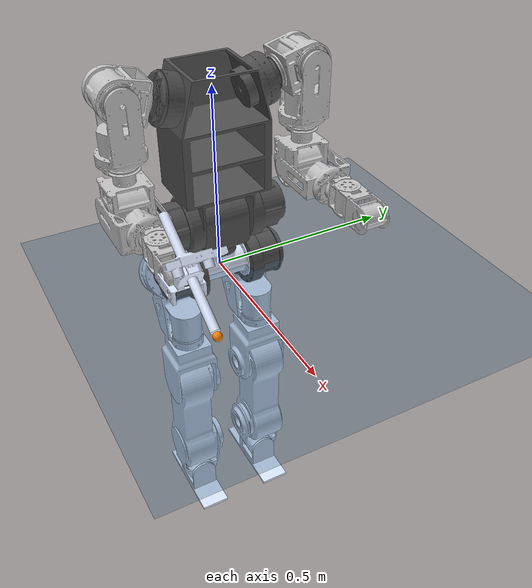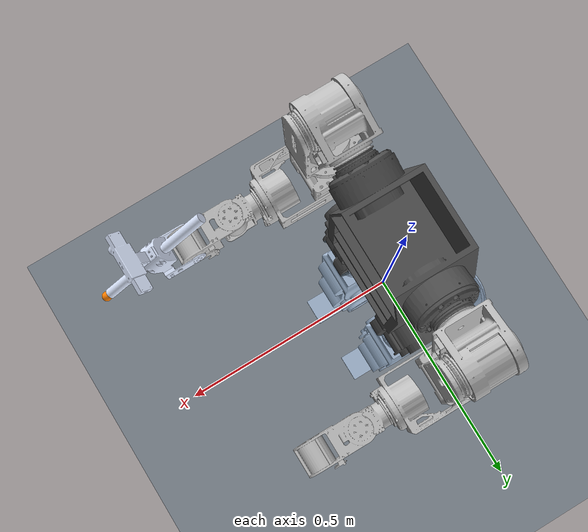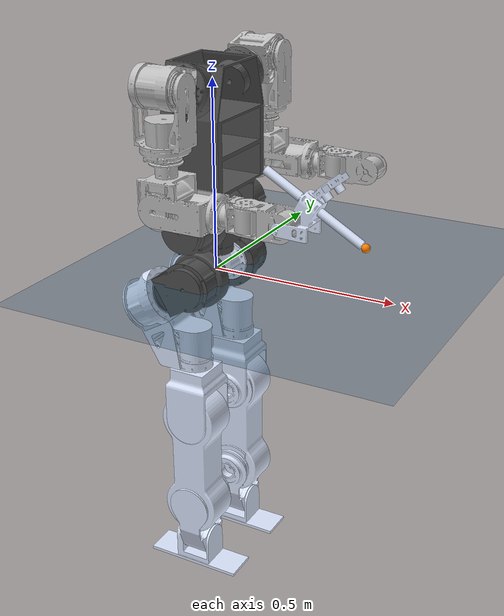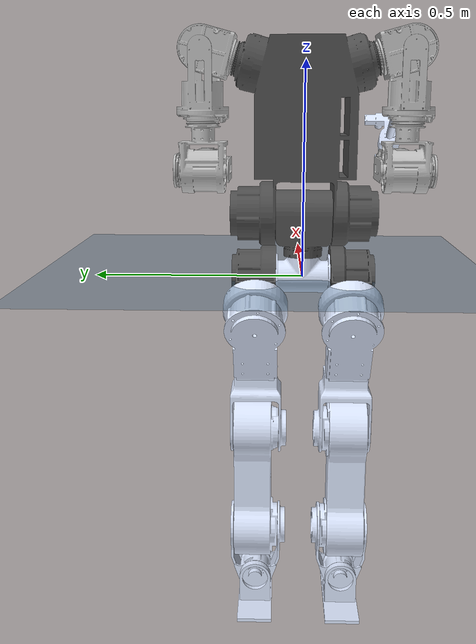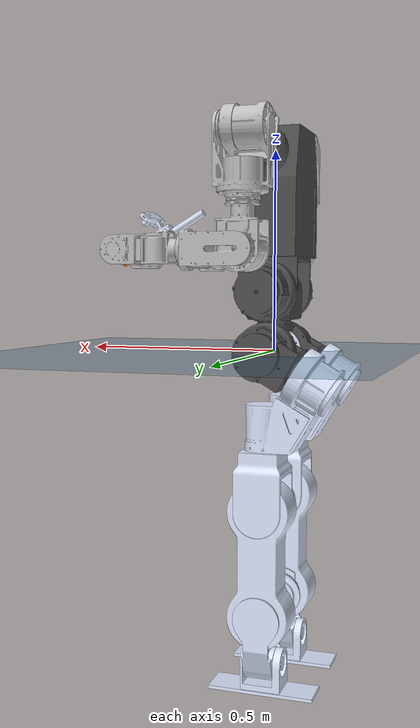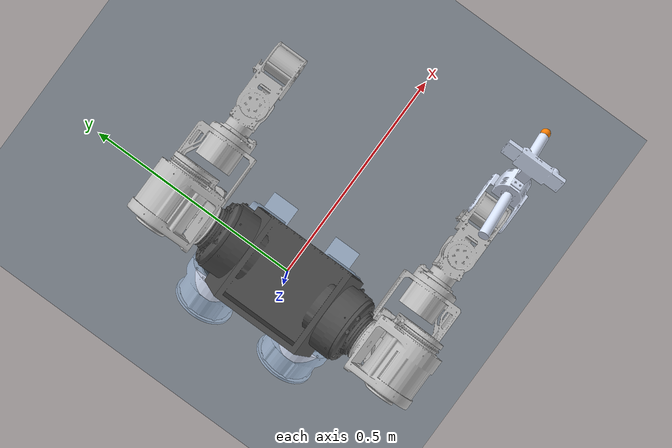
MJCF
<mujoco model="walking scene">

    <!-- Default options -->
    <compiler angle="radian" autolimits="true" />
    <option integrator="Euler" timestep="0.005" />
    <default>
        <joint armature="0.1" damping="0.1" />
        <default class="visual_only">
            <!-- visual group of 'collision' of 2 is to render -->
            <!-- All geoms with contype⁠=⁠conaffinity⁠=0 are discarded -->
            <geom type="mesh" contype="0" conaffinity="0" group="2" />
        </default>
        <default class="visual_collision">
            <!-- visual group of 'collision' of 2 is to render -->
            <geom type="mesh" solimp=".9 .99 .001" solref=".015 1" group="2" />
        </default>
        <default class="no_visual_collision">
            <!-- visual group of 'collision' of 3 is NOT to render -->
            <geom type="capsule" solimp=".9 .99 .001" solref=".015 1" group="3" />
        </default>
    </default>

  <include file="./prototype_v2.1.xml" />

  <!-- Floor and Sky -->
  <include file="./floor.xml" />

</mujoco>

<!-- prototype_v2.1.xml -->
<mujoco model="prototype_v2.1">
  <compiler angle="radian" />
  <asset>
    <mesh name="pelvis_link" content_type="model/stl" file="../meshes/pelvis_link.STL" />
    <mesh name="left_hip_pitch_link" content_type="model/stl" file="../meshes/left_hip_pitch_link.STL" />
    <mesh name="left_hip_roll_link" content_type="model/stl" file="../meshes/left_hip_roll_link.STL" />
    <mesh name="left_hip_yaw_link" content_type="model/stl" file="../meshes/left_hip_yaw_link.STL" />
    <mesh name="left_knee_pitch_link" content_type="model/stl" file="../meshes/left_knee_pitch_link.STL" />
    <mesh name="left_ankle_pitch_link" content_type="model/stl" file="../meshes/left_ankle_pitch_link.STL" />
    <mesh name="left_ankle_roll_link" content_type="model/stl" file="../meshes/left_ankle_roll_link.STL" />
    <mesh name="right_hip_pitch_link" content_type="model/stl" file="../meshes/right_hip_pitch_link.STL" />
    <mesh name="right_hip_roll_link" content_type="model/stl" file="../meshes/right_hip_roll_link.STL" />
    <mesh name="right_hip_yaw_link" content_type="model/stl" file="../meshes/right_hip_yaw_link.STL" />
    <mesh name="right_knee_pitch_link" content_type="model/stl" file="../meshes/right_knee_pitch_link.STL" />
    <mesh name="right_ankle_pitch_link" content_type="model/stl" file="../meshes/right_ankle_pitch_link.STL" />
    <mesh name="right_ankle_roll_link" content_type="model/stl" file="../meshes/right_ankle_roll_link.STL" />
    <mesh name="waist_yaw_link" content_type="model/stl" file="../meshes/waist_yaw_link.STL" />
    <mesh name="waist_pitch_link" content_type="model/stl" file="../meshes/waist_pitch_link.STL" />
    <mesh name="left_shoulder_pitch_link" content_type="model/stl" file="../meshes/left_shoulder_pitch_link.STL" />
    <mesh name="left_shoulder_roll_link" content_type="model/stl" file="../meshes/left_shoulder_roll_link.STL" />
    <mesh name="left_shoulder_yaw_link" content_type="model/stl" file="../meshes/left_shoulder_yaw_link.STL" />
    <mesh name="left_elbow_pitch_link" content_type="model/stl" file="../meshes/left_elbow_pitch_link.STL" />
    <mesh name="left_wrist_roll_link" content_type="model/stl" file="../meshes/left_wrist_roll_link.STL" />
    <mesh name="left_wrist_yaw_link" content_type="model/stl" file="../meshes/left_wrist_yaw_link.STL" />
    <mesh name="right_shoulder_pitch_link" content_type="model/stl" file="../meshes/right_shoulder_pitch_link.STL" />
    <mesh name="right_shoulder_roll_link" content_type="model/stl" file="../meshes/right_shoulder_roll_link.STL" />
    <mesh name="right_shoulder_yaw_link" content_type="model/stl" file="../meshes/right_shoulder_yaw_link.STL" />
    <mesh name="right_elbow_pitch_link" content_type="model/stl" file="../meshes/right_elbow_pitch_link.STL" />
    <mesh name="right_wrist_roll_link" content_type="model/stl" file="../meshes/right_wrist_roll_link.STL" />
    <mesh name="right_wrist_yaw_link" content_type="model/stl" file="../meshes/right_wrist_yaw_link.STL" />
    <mesh name="right_wrist_pitch_link" content_type="model/stl" file="../meshes/right_wrist_pitch_link.STL" />
  </asset>
  <worldbody>
    <body name="pelvis_link">
      <inertial pos="-8.97641009268044E-09 -2.77555756156289E-17 0.0108648264545672" mass="0.784597038788837" fullinertia="0.00185392443193884 0.00119922876251883 0.0017074386215359 -1.45618415560541E-10 -6.93611949427077E-07 3.18516087515177E-20" />
      <freejoint name="floating_base_joint" />
      <geom type="mesh" rgba="0.866667 0.909804 1 1" mesh="pelvis_link" />
      <body name="left_hip_pitch_link" pos="0 0.065 0">
        <inertial pos="-0.00820054 0.0460811 -0.00473458" quat="0.627526 0.380718 0.325875 0.595878" mass="4.25232" diaginertia="0.00965432 0.00860328 0.00838481" />
        <joint name="left_hip_pitch_joint" range="-3.1416 3.1416" actuatorfrcrange="-440 440" axis="0 1 0" />
        <geom type="mesh" rgba="0.309804 0.309804 0.309804 1" mesh="left_hip_pitch_link" />
        <body name="left_hip_roll_link" pos="-0.086603 0.04555 -0.05">
          <inertial pos="-0.0173818 1.52e-05 -0.0488884" quat="0.948171 0.000440933 -0.317759 0.000517561" mass="5.02942" diaginertia="0.0132 0.011713 0.00917182" />
          <joint name="left_hip_roll_joint" range="-3.1416 3.1416" actuatorfrcrange="-440 440" axis="-0.866027 0 -0.499998" />
          <geom type="mesh" rgba="0.866667 0.909804 1 1" mesh="left_hip_roll_link" />
          <body name="left_hip_yaw_link" pos="0.08384 0 -0.18411">
            <inertial pos="3.23277e-10 -0.00164959 -0.0786547" quat="0.999375 0.0353591 0 0" mass="1.27737" diaginertia="0.00709857 0.00574857 0.00472324" />
            <joint name="left_hip_yaw_joint" range="-3.1416 3.1416" actuatorfrcrange="-120 120" />
            <geom type="mesh" rgba="0.866667 0.909804 1 1" mesh="left_hip_yaw_link" />
            <body name="left_knee_pitch_link" pos="0 0.05311 -0.155">
              <inertial pos="3.92707e-11 -0.0488243 -0.135" quat="0.707107 4.1699e-05 4.1699e-05 0.707107" mass="9.23874" diaginertia="0.0447273 0.0405966 0.0204189" />
              <joint name="left_knee_pitch_joint" range="-2.2689 2.2689" actuatorfrcrange="-440 440" axis="0 1 0" />
              <!-- Joint-origin reference attached to the knee's child link. -->
              <site name="left_knee_frame" pos="0 0 0" size="0.008" rgba="1 0.6 0 1" />
              <geom type="mesh" rgba="0.866667 0.909804 1 1" mesh="left_knee_pitch_link" />
              <body name="left_ankle_pitch_link" pos="0 0 -0.27">
                <inertial pos="-0.00242028 -0.0550444 -0.0779381" quat="0.999533 -0.0305693 -5.73122e-05 -3.36933e-06" mass="1.08931" diaginertia="0.00472436 0.00326892 0.00259595" />
                <joint name="left_ankle_pitch_joint" range="-2.0944 2.0944" actuatorfrcrange="-440 440" axis="0 1 0" />
                <geom type="mesh" rgba="0.866667 0.909804 1 1" mesh="left_ankle_pitch_link" />
                <body name="left_ankle_roll_link" pos="0.03525 -0.05311 -0.125">
                  <inertial pos="-0.0406256 -3.32181e-09 -0.053293" quat="0 0.720439 0 0.693518" mass="1.12339" diaginertia="0.00428485 0.00394406 0.000971564" />
                  <joint name="left_ankle_roll_joint" range="-0.6981 0.6981" actuatorfrcrange="-60 60" axis="1 0 0" />
                  <geom type="mesh" rgba="0.866667 0.909804 1 1" mesh="left_ankle_roll_link" />
                  <site name="left_foot_floor" pos="-0.04125 0 -0.0735" size="0.008" rgba="0 1 0 1"/>
                </body>
              </body>
            </body>
          </body>
        </body>
      </body>
      <body name="right_hip_pitch_link" pos="0 -0.065 0">
        <inertial pos="-0.00820054 -0.0460811 -0.00473458" quat="0.595585 0.326458 0.381313 0.62714" mass="4.25232" diaginertia="0.00965431 0.00860402 0.00838408" />
        <joint name="right_hip_pitch_joint" range="-3.1416 3.1416" actuatorfrcrange="-440 440" axis="0 1 0" />
        <geom type="mesh" rgba="0.309804 0.309804 0.309804 1" mesh="right_hip_pitch_link" />
        <body name="right_hip_roll_link" pos="-0.086603 -0.04555 -0.05">
          <inertial pos="-0.0173818 1.51995e-05 -0.0488884" quat="0.948169 0.000459124 -0.317765 0.000528129" mass="5.02942" diaginertia="0.0132001 0.0117126 0.00917223" />
          <joint name="right_hip_roll_joint" range="-3.1416 3.1416" actuatorfrcrange="-440 440" axis="-0.866027 0 -0.499998" />
          <geom type="mesh" rgba="0.866667 0.909804 1 1" mesh="right_hip_roll_link" />
          <body name="right_hip_yaw_link" pos="0.08384 0 -0.18411">
            <inertial pos="-3.32839e-10 0.00164959 -0.0786547" quat="0.999375 -0.0353591 0 0" mass="1.27737" diaginertia="0.00709857 0.00574857 0.00472324" />
            <joint name="right_hip_yaw_joint" range="-3.1416 3.1416" actuatorfrcrange="-120 120" />
            <geom type="mesh" rgba="0.866667 0.909804 1 1" mesh="right_hip_yaw_link" />
            <body name="right_knee_pitch_link" pos="0 -0.05311 -0.155">
              <inertial pos="-3.92712e-11 0.0488243 -0.135" quat="0.707107 -6.29936e-05 -6.29936e-05 0.707107" mass="9.23874" diaginertia="0.0447273 0.040769 0.0202466" />
              <joint name="right_knee_pitch_joint" range="-2.2689 2.2689" actuatorfrcrange="-440 440" axis="0 1 0" />
              <site name="right_knee_frame" pos="0 0 0" size="0.008" rgba="1 0.6 0 1" />
              <geom type="mesh" rgba="0.866667 0.909804 1 1" mesh="right_knee_pitch_link" />
              <body name="right_ankle_pitch_link" pos="0 0 -0.27">
                <inertial pos="-0.00242028 0.0550444 -0.0779381" quat="0.99954 0.0303284 -5.72928e-05 3.34587e-06" mass="1.08931" diaginertia="0.00472436 0.00326963 0.00259524" />
                <joint name="right_ankle_pitch_joint" range="-2.0944 2.0944" actuatorfrcrange="-440 440" axis="0 1 0" />
                <geom type="mesh" rgba="0.866667 0.909804 1 1" mesh="right_ankle_pitch_link" />
                <body name="right_ankle_roll_link" pos="0.03525 0.05311 -0.125">
                  <inertial pos="-0.0406256 -3.32181e-09 -0.053293" quat="0 0.720439 0 0.693518" mass="1.12339" diaginertia="0.00428485 0.00394406 0.000971564" />
                  <joint name="right_ankle_roll_joint" range="-0.6981 0.6981" actuatorfrcrange="-60 60" axis="1 0 0" />
                  <geom type="mesh" rgba="0.866667 0.909804 1 1" mesh="right_ankle_roll_link" />
                  <site name="right_foot_floor" pos="-0.04125 0 -0.0735" size="0.008" rgba="0 1 0 1"/>
                </body>
              </body>
            </body>
          </body>
        </body>
      </body>
      <body name="waist_yaw_link" pos="0 0 0.049">
        <inertial pos="0 7.6822e-10 0.076521" quat="0.707107 0.707107 0 0" mass="1.51535" diaginertia="0.00470753 0.00431502 0.0033082" />
        <joint name="waist_yaw_joint" range="-3.1416 3.1416" actuatorfrcrange="-120 120" />
        <geom type="mesh" rgba="0.309804 0.309804 0.309804 1" mesh="waist_yaw_link" />
        <body name="waist_pitch_link" pos="0 0 0.1025">
          <inertial pos="-0.00245884 0.000228142 0.126528" quat="0.715083 0.698439 -0.0176726 0.0229529" mass="16.5953" diaginertia="0.117269 0.0884814 0.0840695" />
          <joint name="waist_pitch_joint" range="-0.5236 1.5708" actuatorfrcrange="-880 880" axis="0 1 0" />
          <geom type="mesh" rgba="0.309804 0.309804 0.309804 1" mesh="waist_pitch_link" />
          <body name="left_shoulder_pitch_link" pos="0.005002 0.16096 0.34961">
            <inertial pos="0.00351066 0.0593843 0.0158737" quat="0.596739 0.785659 -0.100608 -0.128531" mass="1.30301" diaginertia="0.00210813 0.00169533 0.00157503" />
            <joint name="left_shoulder_pitch_joint" range="-2.22529 2.22529" actuatorfrcrange="-120 120" axis="0 0.965926 0.258819" />
            <geom type="mesh" rgba="0.752941 0.752941 0.752941 1" mesh="left_shoulder_pitch_link" />
            <body name="left_shoulder_roll_link" pos="0.056998 0.076308 0.020448">
              <inertial pos="-0.0391671 -0.000373265 -0.103067" quat="0.976825 -0.00972197 0.208858 -0.045782" mass="1.31133" diaginertia="0.00254636 0.00253025 0.00157224" />
              <joint name="left_shoulder_roll_joint" range="-0.261799 3.40339" actuatorfrcrange="-120 120" axis="1 0 0" />
              <geom type="mesh" rgba="0.752941 0.752941 0.752941 1" mesh="left_shoulder_roll_link" />
              <body name="left_shoulder_yaw_link" pos="-0.047998 0 -0.164">
                <inertial pos="1.04708e-05 0.00306252 -0.0835337" quat="0.698327 0.109537 -0.106087 0.699347" mass="1.41633" diaginertia="0.00201873 0.00165446 0.00154855" />
                <joint name="left_shoulder_yaw_joint" range="-2.2253 2.2253" actuatorfrcrange="-120 120" />
                <geom type="mesh" rgba="0.752941 0.752941 0.752941 1" mesh="left_shoulder_yaw_link" />
                <body name="left_elbow_pitch_link" pos="0 0.057 -0.109">
                  <inertial pos="0.0989174 -0.0428684 1.12374e-05" quat="0.100037 0.69785 -0.114325 0.699949" mass="0.884104" diaginertia="0.00177209 0.00174286 0.000784864" />
                  <joint name="left_elbow_pitch_joint" range="-0.698132 3.83972" actuatorfrcrange="-120 120" axis="0 1 0" />
                  <geom type="mesh" rgba="0.752941 0.752941 0.752941 1" mesh="left_elbow_pitch_link" />
                  <body name="left_wrist_roll_link" pos="0.1555 -0.053 0">
                    <inertial pos="0.0409389 1.44011e-06 0.000142694" quat="0.000167826 0.394201 3.11856e-05 0.919024" mass="0.327222" diaginertia="0.000187696 0.000182806 0.000136231" />
                    <joint name="left_wrist_roll_joint" range="-2.96706 2.96706" actuatorfrcrange="-60 60" axis="1 0 0" />
                    <geom type="mesh" rgba="0.752941 0.752941 0.752941 1" mesh="left_wrist_roll_link" />
                    <body name="left_wrist_yaw_link" pos="0.057 0 0.031">
                      <inertial pos="0.0668216 0.000906687 -0.0264071" quat="0.000750639 0.702279 -0.000979261 0.711901" mass="0.398649" diaginertia="0.000245797 0.000235943 0.000145456" />
                      <joint name="left_wrist_yaw_joint" range="-1.26275 1.26275" actuatorfrcrange="-36 36" />
                      <geom type="mesh" rgba="0.752941 0.752941 0.752941 1" mesh="left_wrist_yaw_link" />
                    </body>
                  </body>
                </body>
              </body>
            </body>
          </body>
          <body name="right_shoulder_pitch_link" pos="0.0049985 -0.16096 0.34961">
            <inertial pos="0.00351417 -0.059365 0.0159458" quat="0.779749 0.604441 0.130447 0.0981125" mass="1.30301" diaginertia="0.00210813 0.00169533 0.00157503" />
            <joint name="right_shoulder_pitch_joint" range="-2.22529 2.22529" actuatorfrcrange="-120 120" axis="0 -0.965926 0.258819" />
            <geom type="mesh" rgba="0.752941 0.752941 0.752941 1" mesh="right_shoulder_pitch_link" />
            <body name="right_shoulder_roll_link" pos="0.057001 -0.076308 0.020446">
              <inertial pos="-0.0391671 -0.000373022 -0.103063" quat="0.976825 -0.00972197 0.208858 -0.045782" mass="1.31133" diaginertia="0.00254636 0.00253025 0.00157224" />
              <joint name="right_shoulder_roll_joint" range="-3.40339 0.261799" actuatorfrcrange="-120 120" axis="1 0 0" />
              <geom type="mesh" rgba="0.752941 0.752941 0.752941 1" mesh="right_shoulder_roll_link" />
              <body name="right_shoulder_yaw_link" pos="-0.047998 0 -0.164">
                <inertial pos="-1.49518e-05 -0.00306231 -0.0835337" quat="0.698327 -0.109537 0.106087 0.699347" mass="1.41633" diaginertia="0.00201873 0.00165446 0.00154855" />
                <joint name="right_shoulder_yaw_joint" range="-2.2253 2.2253" actuatorfrcrange="-120 120" />
                <geom type="mesh" rgba="0.752941 0.752941 0.752941 1" mesh="right_shoulder_yaw_link" />
                <body name="right_elbow_pitch_link" pos="0 -0.057 -0.109">
                  <inertial pos="0.0989129 0.0428684 -1.17024e-05" quat="-0.114325 0.699949 0.100037 0.69785" mass="0.884104" diaginertia="0.00177209 0.00174286 0.000784864" />
                  <joint name="right_elbow_pitch_joint" range="-0.698132 3.83972" actuatorfrcrange="-120 120" axis="0 1 0" />
                  <geom type="mesh" rgba="0.752941 0.752941 0.752941 1" mesh="right_elbow_pitch_link" />
                  <body name="right_wrist_roll_link" pos="0.1555 0.053 0">
                    <inertial pos="0.0409389 1.44011e-06 0.000142694" quat="0.000167826 0.394201 3.11856e-05 0.919024" mass="0.327222" diaginertia="0.000187696 0.000182806 0.000136231" />
                    <joint name="right_wrist_roll_joint" range="-2.96706 2.96706" actuatorfrcrange="-60 60" axis="1 0 0" />
                    <geom type="mesh" rgba="0.752941 0.752941 0.752941 1" mesh="right_wrist_roll_link" />
                    <body name="right_wrist_yaw_link" pos="0.057 0 0.031">
                      <inertial pos="0.0668216 0.000906687 -0.0264071" quat="0.000750639 0.702279 -0.000979261 0.711901" mass="0.398649" diaginertia="0.000245797 0.000235943 0.000145456" />
                      <joint name="right_wrist_yaw_joint" range="-1.26275 1.26275" actuatorfrcrange="-36 36" />
                      <geom type="mesh" rgba="0.752941 0.752941 0.752941 1" mesh="right_wrist_yaw_link" />
                      <body name="right_wrist_pitch_link" pos="0.097 0.0315 -0.0285">
                        <inertial pos="0.0701643 -0.0080589 0.0124248" quat="0.639163 -0.0845284 -0.0710007 0.761108" mass="0.2" diaginertia="0.000562349 0.000499452 0.000130589" />
                        <joint name="right_wrist_pitch_joint" range="-1.5708 1.5708" actuatorfrcrange="-36 36" axis="0 1 0" />
                        <geom type="mesh" rgba="0.866667 0.909804 1 1" mesh="right_wrist_pitch_link" />
                        <site name="right_welding_point" pos="0.19535 -0.032 -0.01908" size="0.01" rgba="1 0.5 0 1" />
                      </body>
                    </body>
                  </body>
                </body>
              </body>
            </body>
          </body>
        </body>
      </body>
    </body>
  </worldbody>
  <actuator>
    <general name="left_hip_pitch_joint" joint="left_hip_pitch_joint" ctrllimited="true" ctrlrange="-440 440" forcelimited="true" forcerange="-440 440" />
    <general name="left_hip_roll_joint" joint="left_hip_roll_joint" ctrllimited="true" ctrlrange="-440 440" forcelimited="true" forcerange="-440 440" />
    <general name="left_hip_yaw_joint" joint="left_hip_yaw_joint" ctrllimited="true" ctrlrange="-120 120" forcelimited="true" forcerange="-120 120" />
    <general name="left_knee_pitch_joint" joint="left_knee_pitch_joint" ctrllimited="true" ctrlrange="-440 440" forcelimited="true" forcerange="-440 440" />
    <general name="left_ankle_pitch_joint" joint="left_ankle_pitch_joint" ctrllimited="true" ctrlrange="-440 440" forcelimited="true" forcerange="-440 440" />
    <general name="left_ankle_roll_joint" joint="left_ankle_roll_joint" ctrllimited="true" ctrlrange="-60 60" forcelimited="true" forcerange="-60 60" />
    <general name="right_hip_pitch_joint" joint="right_hip_pitch_joint" ctrllimited="true" ctrlrange="-440 440" forcelimited="true" forcerange="-440 440" />
    <general name="right_hip_roll_joint" joint="right_hip_roll_joint" ctrllimited="true" ctrlrange="-440 440" forcelimited="true" forcerange="-440 440" />
    <general name="right_hip_yaw_joint" joint="right_hip_yaw_joint" ctrllimited="true" ctrlrange="-120 120" forcelimited="true" forcerange="-120 120" />
    <general name="right_knee_pitch_joint" joint="right_knee_pitch_joint" ctrllimited="true" ctrlrange="-440 440" forcelimited="true" forcerange="-440 440" />
    <general name="right_ankle_pitch_joint" joint="right_ankle_pitch_joint" ctrllimited="true" ctrlrange="-440 440" forcelimited="true" forcerange="-440 440" />
    <general name="right_ankle_roll_joint" joint="right_ankle_roll_joint" ctrllimited="true" ctrlrange="-60 60" forcelimited="true" forcerange="-60 60" />
    <general name="waist_yaw_joint" joint="waist_yaw_joint" ctrllimited="true" ctrlrange="-120 120" forcelimited="true" forcerange="-120 120" />
    <general name="waist_pitch_joint" joint="waist_pitch_joint" ctrllimited="true" ctrlrange="-880 880" forcelimited="true" forcerange="-880 880" />
    <general name="left_shoulder_pitch_joint" joint="left_shoulder_pitch_joint" ctrllimited="true" ctrlrange="-120 120" forcelimited="true" forcerange="-120 120" />
    <general name="left_shoulder_roll_joint" joint="left_shoulder_roll_joint" ctrllimited="true" ctrlrange="-120 120" forcelimited="true" forcerange="-120 120" />
    <general name="left_shoulder_yaw_joint" joint="left_shoulder_yaw_joint" ctrllimited="true" ctrlrange="-120 120" forcelimited="true" forcerange="-120 120" />
    <general name="left_elbow_pitch_joint" joint="left_elbow_pitch_joint" ctrllimited="true" ctrlrange="-120 120" forcelimited="true" forcerange="-120 120" />
    <general name="left_wrist_roll_joint" joint="left_wrist_roll_joint" ctrllimited="true" ctrlrange="-60 60" forcelimited="true" forcerange="-60 60" />
    <general name="left_wrist_yaw_joint" joint="left_wrist_yaw_joint" ctrllimited="true" ctrlrange="-36 36" forcelimited="true" forcerange="-36 36" />
    <general name="right_shoulder_pitch_joint" joint="right_shoulder_pitch_joint" ctrllimited="true" ctrlrange="-120 120" forcelimited="true" forcerange="-120 120" />
    <general name="right_shoulder_roll_joint" joint="right_shoulder_roll_joint" ctrllimited="true" ctrlrange="-120 120" forcelimited="true" forcerange="-120 120" />
    <general name="right_shoulder_yaw_joint" joint="right_shoulder_yaw_joint" ctrllimited="true" ctrlrange="-120 120" forcelimited="true" forcerange="-120 120" />
    <general name="right_elbow_pitch_joint" joint="right_elbow_pitch_joint" ctrllimited="true" ctrlrange="-120 120" forcelimited="true" forcerange="-120 120" />
    <general name="right_wrist_roll_joint" joint="right_wrist_roll_joint" ctrllimited="true" ctrlrange="-60 60" forcelimited="true" forcerange="-60 60" />
    <general name="right_wrist_yaw_joint" joint="right_wrist_yaw_joint" ctrllimited="true" ctrlrange="-36 36" forcelimited="true" forcerange="-36 36" />
    <general name="right_wrist_pitch_joint" joint="right_wrist_pitch_joint" ctrllimited="true" ctrlrange="-36 36" forcelimited="true" forcerange="-36 36" />
  </actuator>
</mujoco>

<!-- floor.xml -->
<mujoco model="floor and sky">

    <visual>
        <headlight diffuse="0.6 0.6 0.6" ambient="0.3 0.3 0.3" specular="0 0 0" />
        <rgba haze="0.15 0.25 0.35 1" />
    </visual>

    <asset>
        <texture name="grid" type="2d" builtin="checker" rgb1=".075 .224 .325" rgb2=".208 .392 .537" width="512" height="512"/>
        <material name="grid" texture="grid" texrepeat="1 1" texuniform="true" reflectance=".2"/>
    </asset>

    <worldbody>
        <light pos="1 -1 1.5" dir="-1 1 -1" diffuse="0.5 0.5 0.5" directional="true" />
        <geom name="floor" group="1" size="0 0 0.05" type="plane" material="grid" friction="1.0 0.005 0.001" solref="0.01 0.001" solimp="0.9 0.95 0.001 0.5 2"/>

    </worldbody>

</mujoco>
